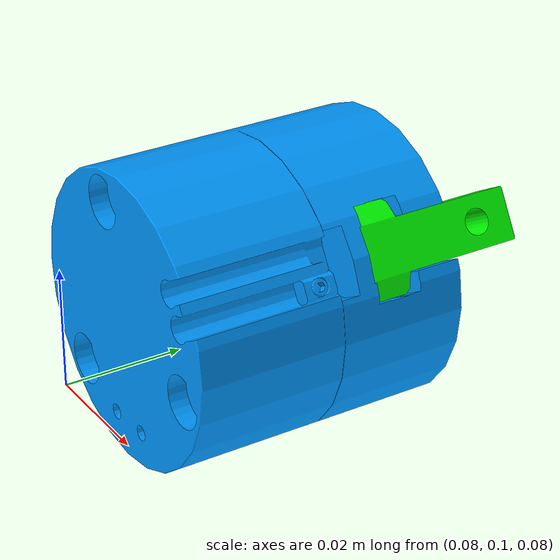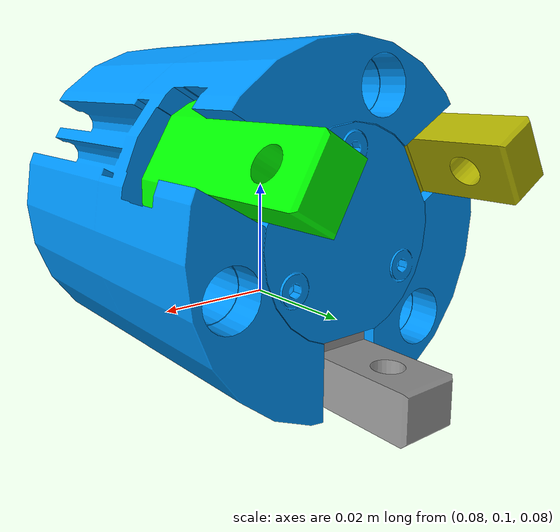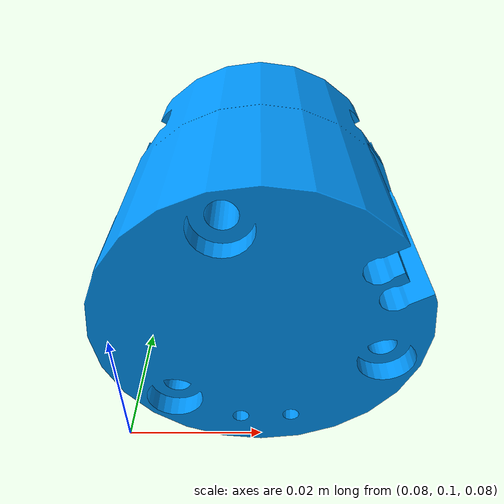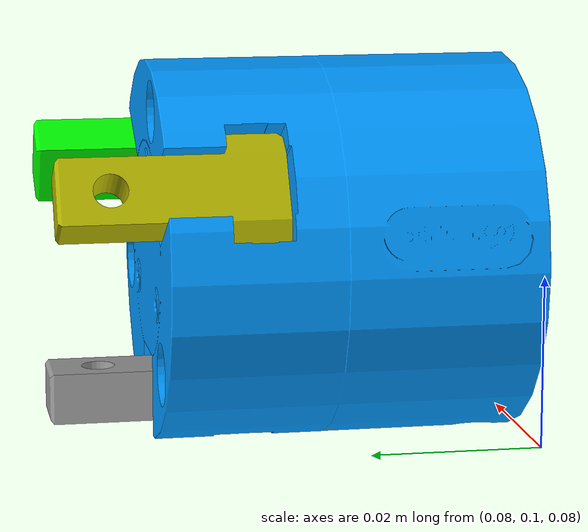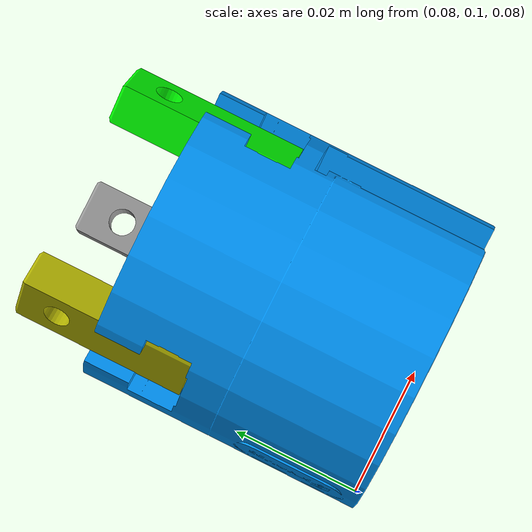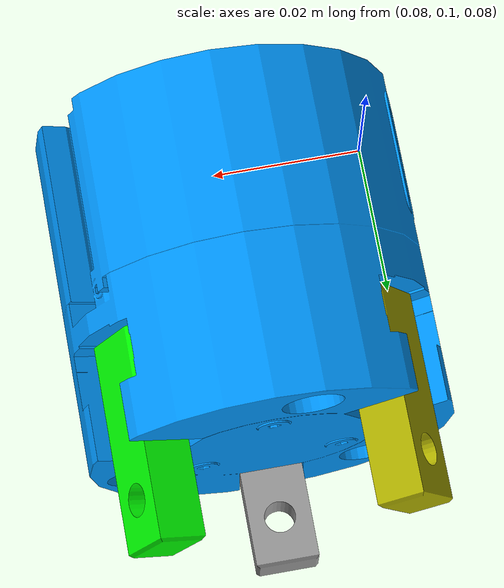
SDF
<?xml version="1.0" ?>
<sdf version="1.4">

  <model name="schunk_mpz45">

    <link name="head">
      <pose frame="">0.1 0.1 0.1 0 0 0</pose>
      <inertial>
        <mass>1</mass>
        <inertia>
          <ixx>0.166667</ixx>
          <ixy>0</ixy>
          <ixz>0</ixz>
          <iyy>0.166667</iyy>
          <iyz>0</iyz>
          <izz>0.166667</izz>
        </inertia>
        <pose frame="">0 0 0 0 0 0</pose>
      </inertial>
      <gravity>false</gravity>
      <self_collide>0</self_collide>
      <visual name="visual">
        <pose frame="">0 0 0 0 -0 0</pose>
        <geometry>
          <mesh>
            <uri>/media/sf_SharedFolder/catkin_ws/src/schunk_mpz45/stl/SchunkGripperNoGripperCorrect.stl</uri>
            <scale>1 1 1</scale>
          </mesh>
        </geometry>
        <material>
          <lighting>1</lighting>
          <script>
            <uri>file://media/materials/scripts/gazebo.material</uri>
            <name>Gazebo/Grey</name>
          </script>
          <ambient>0 0 1 1</ambient>
          <diffuse>0 0.6 1 1</diffuse>
          <specular>0 0.01 0.01 1</specular>
          <emissive>0 0 0 1</emissive>
          <shader type="vertex">
            <normal_map>__default__</normal_map>
          </shader>
        </material>
        <cast_shadows>1</cast_shadows>
        <transparency>0</transparency>
      </visual>
      <collision name="collision">
        <laser_retro>0</laser_retro>
        <max_contacts>10</max_contacts>
        <pose frame="">0 0 0 0 -0 0</pose>
        <geometry>
          <mesh>
            <uri>/media/sf_SharedFolder/catkin_ws/src/schunk_mpz45/stl/SchunkGripperNoGripper.stl</uri>
          </mesh>
        </geometry>
        <surface>
          <friction>
            <ode>
              <mu>1</mu>
              <mu2>1</mu2>
              <fdir1>0 0 0</fdir1>
              <slip1>0</slip1>
              <slip2>0</slip2>
            </ode>
            <torsional>
              <coefficient>1</coefficient>
              <patch_radius>0</patch_radius>
              <surface_radius>0</surface_radius>
              <use_patch_radius>1</use_patch_radius>
              <ode>
                <slip>0</slip>
              </ode>
            </torsional>
          </friction>
          <bounce>
            <restitution_coefficient>0</restitution_coefficient>
            <threshold>1e+06</threshold>
          </bounce>
          <contact>
            <collide_without_contact>0</collide_without_contact>
            <collide_without_contact_bitmask>1</collide_without_contact_bitmask>
            <collide_bitmask>1</collide_bitmask>
            <ode>
              <soft_cfm>0</soft_cfm>
              <soft_erp>0.2</soft_erp>
              <kp>1e+13</kp>
              <kd>1</kd>
              <max_vel>0.01</max_vel>
              <min_depth>0</min_depth>
            </ode>
            <bullet>
              <split_impulse>1</split_impulse>
              <split_impulse_penetration_threshold>-0.01</split_impulse_penetration_threshold>
              <soft_cfm>0</soft_cfm>
              <soft_erp>0.2</soft_erp>
              <kp>1e+13</kp>
              <kd>1</kd>
            </bullet>
          </contact>
        </surface>
      </collision>
    </link>
    <link name="gripper1">
      <pose frame="">0.1 0.1 0.1 0 0 0</pose>
      <inertial>
        <mass>1</mass>
        <inertia>
          <ixx>0.166667</ixx>
          <ixy>0</ixy>
          <ixz>0</ixz>
          <iyy>0.166667</iyy>
          <iyz>0</iyz>
          <izz>0.166667</izz>
        </inertia>
        <pose frame="">0 0 0 0 -0 0</pose>
      </inertial>
      <gravity>false</gravity>
      <self_collide>0</self_collide>
      <kinematic>0</kinematic>
      <visual name="visual">
        <pose frame="">0 0 0 0 -0 0</pose>
        <geometry>
          <mesh>
            <uri>/media/sf_SharedFolder/catkin_ws/src/schunk_mpz45/stl/SchunkSingleGripper1.stl</uri>
            <scale>1 1 1</scale>
          </mesh>
        </geometry>
        <material>
          <lighting>1</lighting>
          <script>
            <uri>file://media/materials/scripts/gazebo.material</uri>
            <name>Gazebo/Grey</name>
          </script>
          <ambient>0 1 0 1</ambient>
          <diffuse>0.7 0.7 0 1</diffuse>
          <specular>0.01 0.01 0.01 1</specular>
          <emissive>0 0 0 1</emissive>
          <shader type="vertex">
            <normal_map>__default__</normal_map>
          </shader>
        </material>
        <cast_shadows>1</cast_shadows>
        <transparency>0</transparency>
      </visual>
      <collision name="collision">
        <laser_retro>0</laser_retro>
        <max_contacts>10</max_contacts>
        <pose frame="">0 0 0 0 -0 0</pose>
        <geometry>
          <mesh>
            <uri>/media/sf_SharedFolder/catkin_ws/src/schunk_mpz45/stl/SchunkSingleGripper1.stl</uri>
          </mesh>
        </geometry>
        <surface>
          <friction>
            <ode>
              <mu>1</mu>
              <mu2>1</mu2>
              <fdir1>0 0 0</fdir1>
              <slip1>0</slip1>
              <slip2>0</slip2>
            </ode>
            <torsional>
              <coefficient>1</coefficient>
              <patch_radius>0</patch_radius>
              <surface_radius>0</surface_radius>
              <use_patch_radius>1</use_patch_radius>
              <ode>
                <slip>0</slip>
              </ode>
            </torsional>
          </friction>
          <bounce>
            <restitution_coefficient>0</restitution_coefficient>
            <threshold>1e+06</threshold>
          </bounce>
          <contact>
            <collide_without_contact>0</collide_without_contact>
            <collide_without_contact_bitmask>1</collide_without_contact_bitmask>
            <collide_bitmask>1</collide_bitmask>
            <ode>
              <soft_cfm>0</soft_cfm>
              <soft_erp>0.2</soft_erp>
              <kp>1e+13</kp>
              <kd>1</kd>
              <max_vel>0.01</max_vel>
              <min_depth>0</min_depth>
            </ode>
            <bullet>
              <split_impulse>1</split_impulse>
              <split_impulse_penetration_threshold>-0.01</split_impulse_penetration_threshold>
              <soft_cfm>0</soft_cfm>
              <soft_erp>0.2</soft_erp>
              <kp>1e+13</kp>
              <kd>1</kd>
            </bullet>
          </contact>
        </surface>
      </collision>
    </link>
    <link name="gripper2">
      <pose frame="">0.1 0.1 0.1 0 0 0</pose>
      <inertial>
        <mass>1</mass>
        <inertia>
          <ixx>0.166667</ixx>
          <ixy>0</ixy>
          <ixz>0</ixz>
          <iyy>0.166667</iyy>
          <iyz>0</iyz>
          <izz>0.166667</izz>
        </inertia>
        <pose frame="">0 0 0 0 -0 0</pose>
      </inertial>
      <gravity>false</gravity>
      <self_collide>0</self_collide>
      <kinematic>0</kinematic>
      <visual name="visual">
        <pose frame="">0 0 0 0 -0 0</pose>
        <geometry>
          <mesh>
            <uri>/media/sf_SharedFolder/catkin_ws/src/schunk_mpz45/stl/SchunkSinglegripper2.stl</uri>
            <scale>1 1 1</scale>
          </mesh>
        </geometry>
        <material>
          <lighting>1</lighting>
          <script>
            <uri>file://media/materials/scripts/gazebo.material</uri>
            <name>Gazebo/Grey</name>
          </script>
          <ambient>0 1 0 1</ambient>
          <diffuse>0.7 0.7 0.7 1</diffuse>
          <specular>0.01 0.01 0.01 1</specular>
          <emissive>0 0 0 1</emissive>
          <shader type="vertex">
            <normal_map>__default__</normal_map>
          </shader>
        </material>
        <cast_shadows>1</cast_shadows>
        <transparency>0</transparency>
      </visual>
      <collision name="collision">
        <laser_retro>0</laser_retro>
        <max_contacts>10</max_contacts>
        <pose frame="">0 0 0 0 -0 0</pose>
        <geometry>
          <mesh>
            <uri>/media/sf_SharedFolder/catkin_ws/src/schunk_mpz45/stl/SchunkSinglegripper2.stl</uri>
          </mesh>
        </geometry>
        <surface>
          <friction>
            <ode>
              <mu>1</mu>
              <mu2>1</mu2>
              <fdir1>0 0 0</fdir1>
              <slip1>0</slip1>
              <slip2>0</slip2>
            </ode>
            <torsional>
              <coefficient>1</coefficient>
              <patch_radius>0</patch_radius>
              <surface_radius>0</surface_radius>
              <use_patch_radius>1</use_patch_radius>
              <ode>
                <slip>0</slip>
              </ode>
            </torsional>
          </friction>
          <bounce>
            <restitution_coefficient>0</restitution_coefficient>
            <threshold>1e+06</threshold>
          </bounce>
          <contact>
            <collide_without_contact>0</collide_without_contact>
            <collide_without_contact_bitmask>1</collide_without_contact_bitmask>
            <collide_bitmask>1</collide_bitmask>
            <ode>
              <soft_cfm>0</soft_cfm>
              <soft_erp>0.2</soft_erp>
              <kp>1e+13</kp>
              <kd>1</kd>
              <max_vel>0.01</max_vel>
              <min_depth>0</min_depth>
            </ode>
            <bullet>
              <split_impulse>1</split_impulse>
              <split_impulse_penetration_threshold>-0.01</split_impulse_penetration_threshold>
              <soft_cfm>0</soft_cfm>
              <soft_erp>0.2</soft_erp>
              <kp>1e+13</kp>
              <kd>1</kd>
            </bullet>
          </contact>
        </surface>
      </collision>
    </link>
    <link name="gripper3">
      <pose frame="">0.1 0.1 0.1 0 0 0</pose>
      <inertial>
        <mass>1</mass>
        <inertia>
          <ixx>0.166667</ixx>
          <ixy>0</ixy>
          <ixz>0</ixz>
          <iyy>0.166667</iyy>
          <iyz>0</iyz>
          <izz>0.166667</izz>
        </inertia>
      </inertial>
      <visual name="visual">
        <pose frame="">0 0 0 0 -0 0</pose>
        <geometry>
          <mesh>
            <uri>/media/sf_SharedFolder/catkin_ws/src/schunk_mpz45/stl/SchunkSingleGripper3.stl</uri>
            <scale>1 1 1</scale>
          </mesh>
        </geometry>
        <material>
          <lighting>1</lighting>
          <script>
            <uri>file://media/materials/scripts/gazebo.material</uri>
            <name>Gazebo/Grey</name>
          </script>
          <ambient>0.3 0.3 0.3 1</ambient>
          <diffuse>0.7 0.7 0.7 1</diffuse>
          <specular>0.01 0.01 0.01 1</specular>
          <emissive>0 0 0 1</emissive>
        </material>
        <cast_shadows>1</cast_shadows>
        <transparency>0</transparency>
      </visual>
      <collision name="collision">
        <laser_retro>0</laser_retro>
        <max_contacts>10</max_contacts>
        <pose frame="">0 0 0 0 -0 0</pose>
        <geometry>
          <mesh>
            <uri>/media/sf_SharedFolder/catkin_ws/src/schunk_mpz45/stl/SchunkSingleGripper3.stl</uri>
          </mesh>
        </geometry>
        <surface>
          <friction>
            <ode>
              <mu>1</mu>
              <mu2>1</mu2>
              <fdir1>0 0 0</fdir1>
              <slip1>0</slip1>
              <slip2>0</slip2>
            </ode>
            <torsional>
              <coefficient>1</coefficient>
              <patch_radius>0</patch_radius>
              <surface_radius>0</surface_radius>
              <use_patch_radius>1</use_patch_radius>
              <ode>
                <slip>0</slip>
              </ode>
            </torsional>
          </friction>
          <bounce>
            <restitution_coefficient>0</restitution_coefficient>
            <threshold>1e+06</threshold>
          </bounce>
          <contact>
            <collide_without_contact>0</collide_without_contact>
            <collide_without_contact_bitmask>1</collide_without_contact_bitmask>
            <collide_bitmask>1</collide_bitmask>
            <ode>
              <soft_cfm>0</soft_cfm>
              <soft_erp>0.2</soft_erp>
              <kp>1e+13</kp>
              <kd>1</kd>
              <max_vel>0.01</max_vel>
              <min_depth>0</min_depth>
            </ode>
            <bullet>
              <split_impulse>1</split_impulse>
              <split_impulse_penetration_threshold>-0.01</split_impulse_penetration_threshold>
              <soft_cfm>0</soft_cfm>
              <soft_erp>0.2</soft_erp>
              <kp>1e+13</kp>
              <kd>1</kd>
            </bullet>
          </contact>
        </surface>
      </collision>
    </link>
    <joint name="gripper1_joint" type="prismatic">
      <parent>head</parent>
      <child>gripper1</child>
      <axis>
        <xyz>0 0 0</xyz>
        <limit>
          <lower> 0 </lower>
          <upper> 0.02 </upper>
        </limit>
        <dynamics>
          <friction>
            100
          </friction>
        </dynamics>
      </axis>
    </joint>
    <joint name="gripper2_joint" type="prismatic">
      <parent>head</parent>
      <child>gripper2</child>
      <axis>
        <xyz>0 0 0</xyz>
        <limit>
          <lower> 0 </lower>
          <upper> 0.02 </upper>
        </limit>
        <dynamics>
          <friction>
          100
        </friction>
        </dynamics>
      </axis>

    </joint>
    <joint name="gripper3_joint" type="prismatic">
      <parent>head</parent>
      <child>gripper3</child>
      <axis>
        <xyz>0 0 0</xyz>
        <limit>
          <lower> 0 </lower>
          <upper> 0.02 </upper>
        </limit>
        <dynamics>
          <friction>
          100
        </friction>
        </dynamics>
      </axis>

    </joint>
    <allow_auto_disable>1</allow_auto_disable>

  </model>
</sdf>
